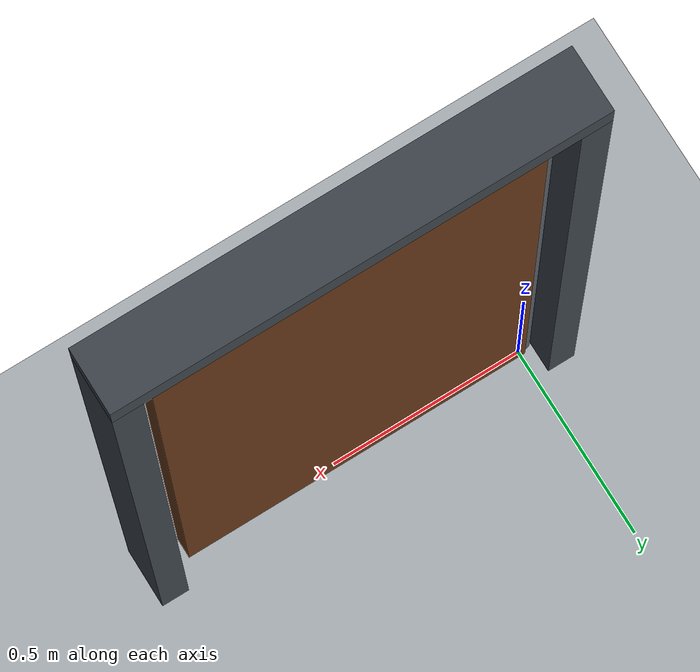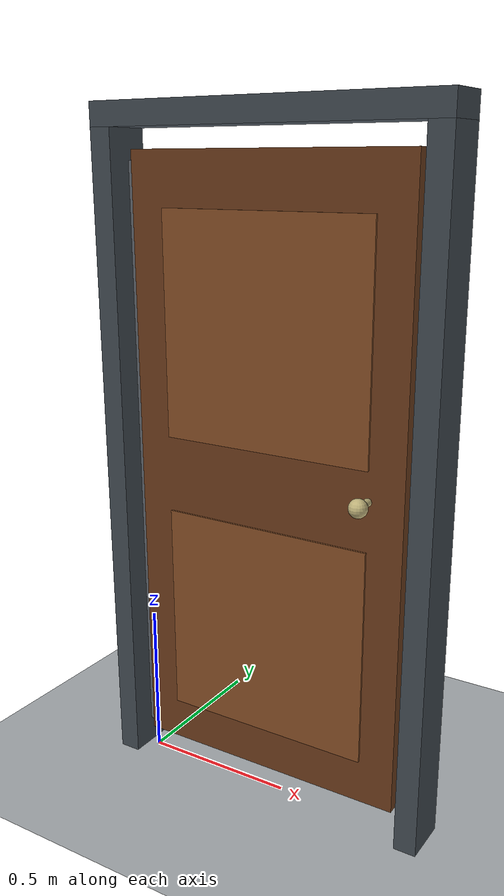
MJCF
<mujoco model="self_closing_door">
  <compiler angle="radian" autolimits="true"/>
  <option timestep="0.002" gravity="0 0 -9.81" integrator="implicitfast"/>

  <visual>
    <headlight ambient="0.4 0.4 0.4" diffuse="0.7 0.7 0.7" specular="0.2 0.2 0.2"/>
  </visual>

  <worldbody>
    <light name="overhead_light" pos="1 -2 4" dir="-0.2 0.3 -1"/>
    <camera name="overview" pos="3 -4 2.7" xyaxes="0.8 0.6 0 -0.22 0.29 0.93"/>

    <geom name="floor" type="plane" size="5 5 0.1" rgba="0.68 0.70 0.72 1" friction="1 0.005 0.0001"/>

    <body name="frame" pos="0 0 0">
      <geom name="frame_hinge_jamb" type="box" pos="-0.07 0 1.02" size="0.035 0.075 1.02" rgba="0.24 0.27 0.30 1"/>
      <geom name="frame_latch_jamb" type="box" pos="0.97 0 1.02" size="0.035 0.075 1.02" rgba="0.24 0.27 0.30 1"/>
      <geom name="frame_header" type="box" pos="0.45 0 2.075" size="0.555 0.075 0.035" rgba="0.24 0.27 0.30 1"/>
    </body>

    <body name="door" pos="0 0 0.08">
      <joint name="hinge" type="hinge" pos="0 0 0" axis="0 0 1" limited="true" range="0 1.6" stiffness="30" springref="-0.15" damping="14" armature="0.02" solreflimit="0.01 1" solimplimit="0.99 0.99 0.001"/>
      <geom name="door_leaf" type="box" pos="0.45 0 0.95" size="0.45 0.025 0.95" mass="9" rgba="0.40 0.22 0.10 1" friction="0.8 0.005 0.0001"/>
      <geom name="door_hinge_barrel" type="cylinder" pos="0 0 0.95" size="0.024 0.92" mass="0.15" contype="0" conaffinity="0" rgba="0.35 0.37 0.40 1"/>
      <geom name="door_upper_panel" type="box" pos="0.45 -0.028 1.40" size="0.34 0.004 0.34" mass="0.05" contype="0" conaffinity="0" rgba="0.50 0.29 0.14 1"/>
      <geom name="door_lower_panel" type="box" pos="0.45 -0.028 0.48" size="0.34 0.004 0.34" mass="0.05" contype="0" conaffinity="0" rgba="0.50 0.29 0.14 1"/>
      <geom name="door_handle_stem" type="capsule" fromto="0.79 -0.025 0.97 0.79 -0.075 0.97" size="0.012" mass="0.03" contype="0" conaffinity="0" rgba="0.75 0.70 0.48 1"/>
      <geom name="door_handle" type="sphere" pos="0.79 -0.085 0.97" size="0.028" mass="0.07" contype="0" conaffinity="0" rgba="0.75 0.70 0.48 1"/>
    </body>
  </worldbody>

  <keyframe>
    <key name="start" qpos="1.2" qvel="0"/>
  </keyframe>
</mujoco>
